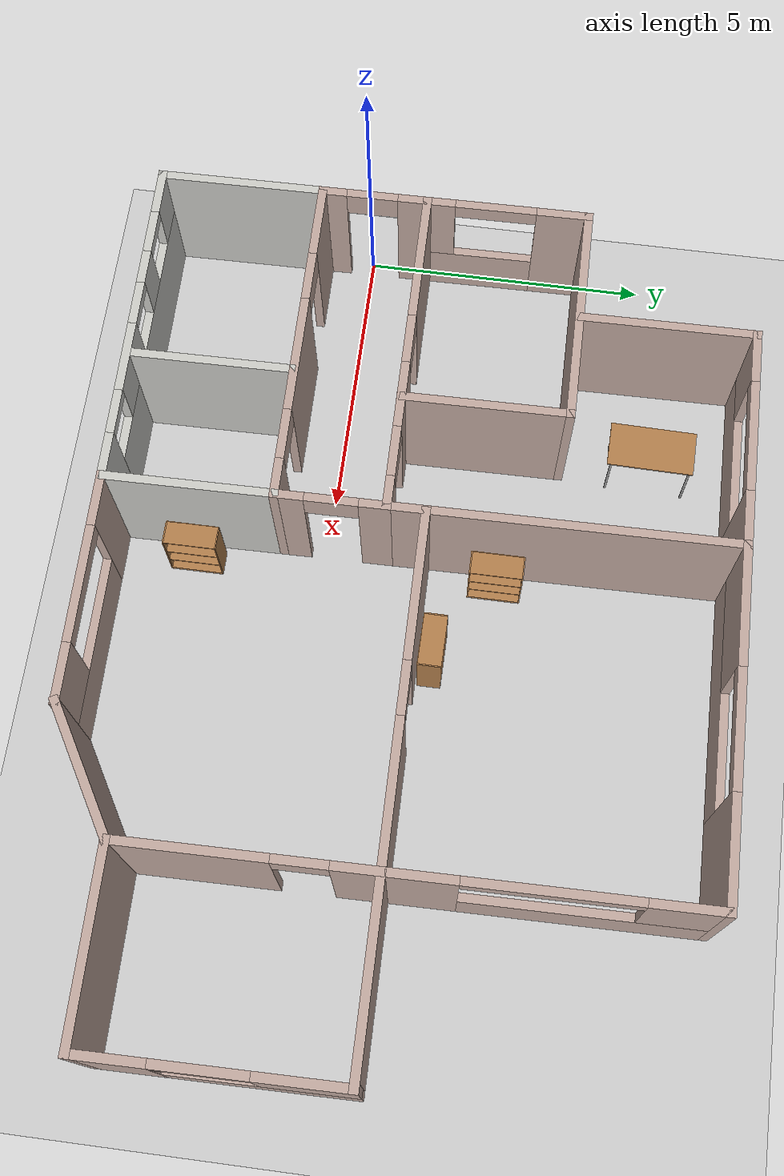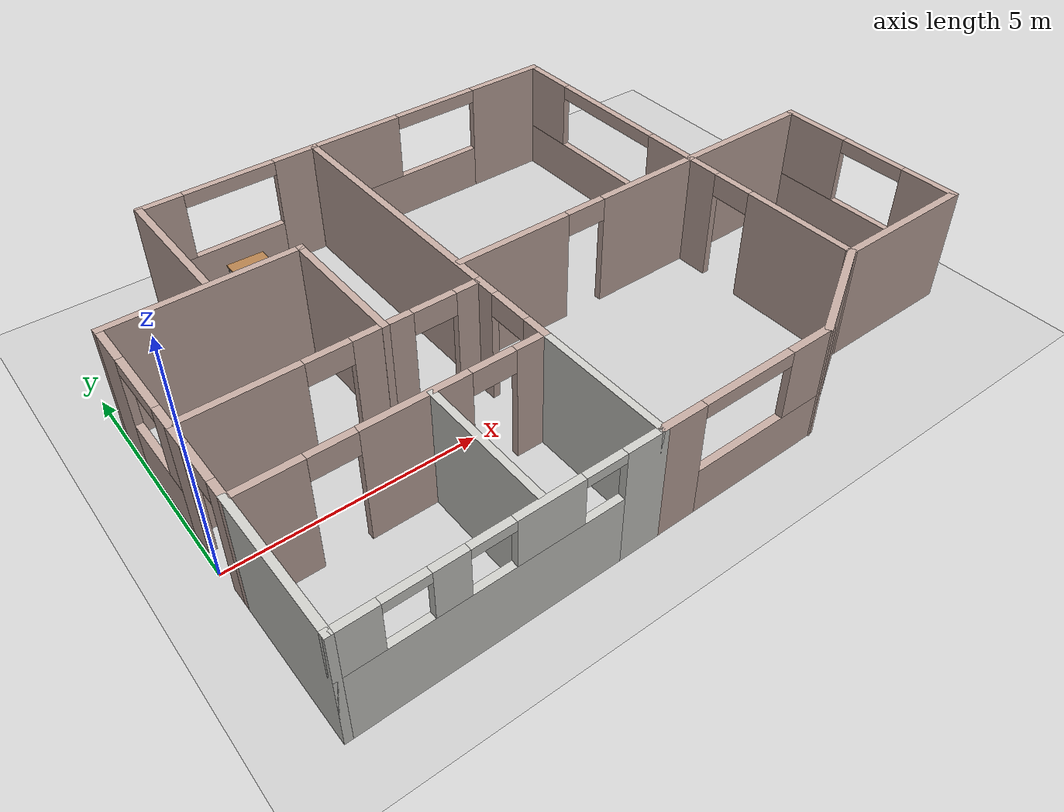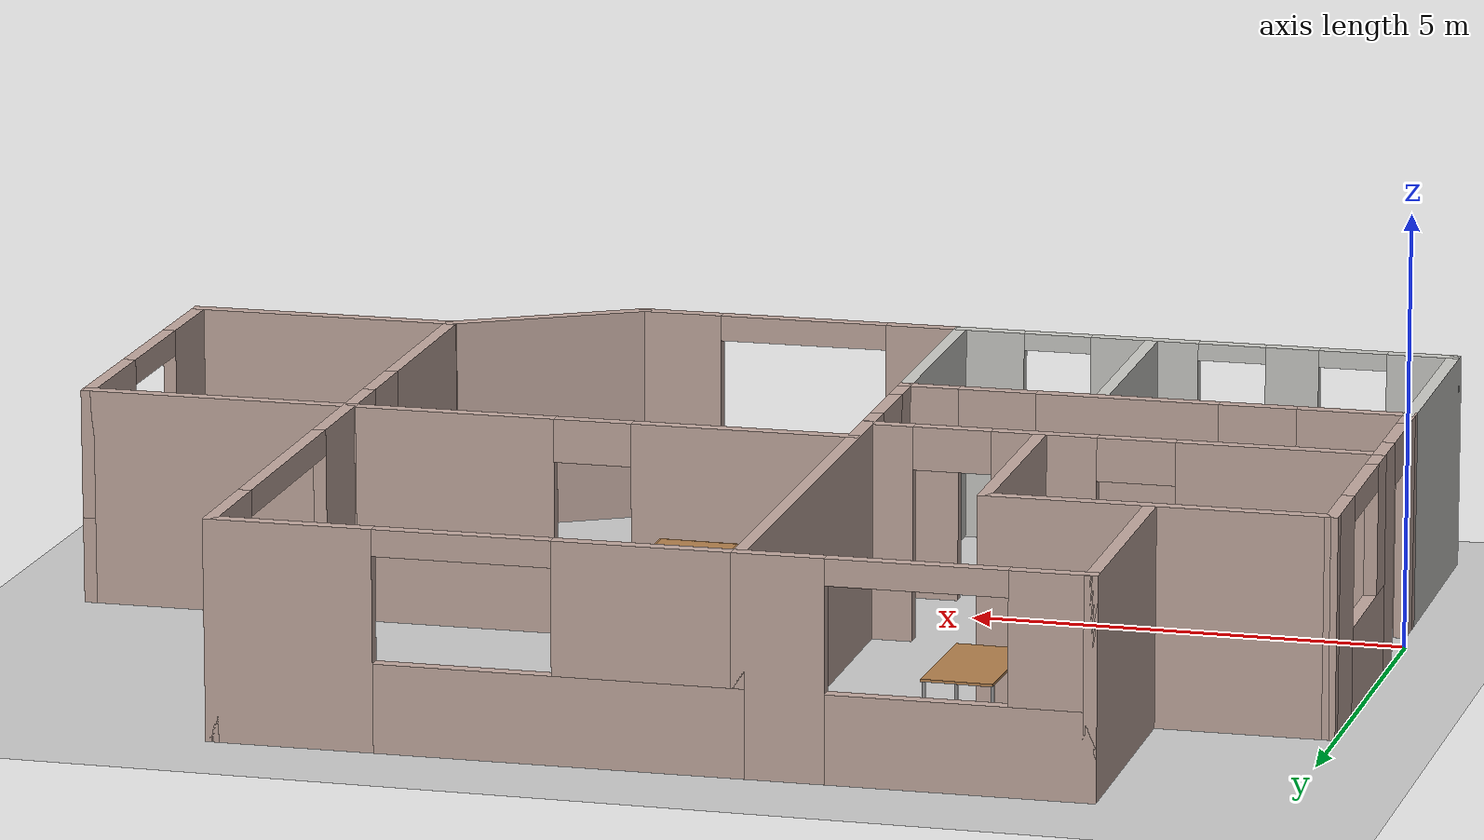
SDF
<sdf version="1.6">
 <world name="default">
  <model name="ground_plane">
   <static>1</static>
   <link name="link">
    <collision name="collision">
     <geometry><plane><normal>0 0 1</normal><size>100 100</size></plane></geometry>
     <surface>
      <contact><collide_bitmask>65535</collide_bitmask></contact>
      <friction><ode><mu>100</mu><mu2>50</mu2></ode></friction>
     </surface>
    </collision>
    <visual name="visual">
     <cast_shadows>0</cast_shadows>
     <geometry><plane><normal>0 0 1</normal><size>100 100</size></plane></geometry>
     <material>
      <script><uri>file://media/materials/scripts/gazebo.material</uri><name>Gazebo/Grey</name></script>
     </material>
    </visual>
   </link>
  </model>
  <model name="mybuilding">
   <pose>7.53126 1.66556 0 0 0 -3.13006</pose>
   <link name="Wall_0">
    <pose>1.56663 1.48627 0 0 -0 -1.5708</pose>
    <visual name="Wall_0_Visual_0">
     <pose>-0.7175 0 1.25 0 -0 0</pose>
     <geometry><box><size>0.565 0.15 2.5</size></box></geometry>
     <material>
      <script><uri>file://media/materials/scripts/gazebo.material</uri><name>Gazebo/Grey</name></script>
      <ambient>0.760784 0.662745 0.627451 1</ambient>
     </material>
     <meta><layer>0</layer></meta>
    </visual>
    <collision name="Wall_0_Collision_0">
     <geometry><box><size>0.565 0.15 2.5</size></box></geometry>
     <pose>-0.7175 0 1.25 0 -0 0</pose>
    </collision>
    <visual name="Wall_0_Visual_1">
     <pose>0.7325 0 1.25 0 -0 0</pose>
     <geometry><box><size>0.535 0.15 2.5</size></box></geometry>
     <material>
      <script><uri>file://media/materials/scripts/gazebo.material</uri><name>Gazebo/Grey</name></script>
      <ambient>0.760784 0.662745 0.627451 1</ambient>
     </material>
     <meta><layer>0</layer></meta>
    </visual>
    <collision name="Wall_0_Collision_1">
     <geometry><box><size>0.535 0.15 2.5</size></box></geometry>
     <pose>0.7325 0 1.25 0 -0 0</pose>
    </collision>
    <visual name="Wall_0_Visual_2">
     <pose>0.015 0 2.25 0 -0 0</pose>
     <geometry><box><size>0.9 0.15 0.5</size></box></geometry>
     <material>
      <script><uri>file://media/materials/scripts/gazebo.material</uri><name>Gazebo/Grey</name></script>
      <ambient>0.760784 0.662745 0.627451 1</ambient>
     </material>
     <meta><layer>0</layer></meta>
    </visual>
    <collision name="Wall_0_Collision_2">
     <geometry><box><size>0.9 0.15 0.5</size></box></geometry>
     <pose>0.015 0 2.25 0 -0 0</pose>
    </collision>
   </link>
   <link name="Wall_1">
    <pose>4.49163 0.561274 0 0 -0 0</pose>
    <visual name="Wall_1_Visual_0">
     <pose>-2.6925 0 1.25 0 -0 0</pose>
     <geometry><box><size>0.615 0.15 2.5</size></box></geometry>
     <material>
      <script><uri>file://media/materials/scripts/gazebo.material</uri><name>Gazebo/Grey</name></script>
      <ambient>0.760784 0.662745 0.627451 1</ambient>
     </material>
     <meta><layer>0</layer></meta>
    </visual>
    <collision name="Wall_1_Collision_0">
     <geometry><box><size>0.615 0.15 2.5</size></box></geometry>
     <pose>-2.6925 0 1.25 0 -0 0</pose>
    </collision>
    <visual name="Wall_1_Visual_1">
     <pose>-0.88 0 1.25 0 -0 0</pose>
     <geometry><box><size>1.21 0.15 2.5</size></box></geometry>
     <material>
      <script><uri>file://media/materials/scripts/gazebo.material</uri><name>Gazebo/Grey</name></script>
      <ambient>0.760784 0.662745 0.627451 1</ambient>
     </material>
     <meta><layer>0</layer></meta>
    </visual>
    <collision name="Wall_1_Collision_1">
     <geometry><box><size>1.21 0.15 2.5</size></box></geometry>
     <pose>-0.88 0 1.25 0 -0 0</pose>
    </collision>
    <visual name="Wall_1_Visual_2">
     <pose>1.8125 0 1.25 0 -0 0</pose>
     <geometry><box><size>2.375 0.15 2.5</size></box></geometry>
     <material>
      <script><uri>file://media/materials/scripts/gazebo.material</uri><name>Gazebo/Grey</name></script>
      <ambient>0.760784 0.662745 0.627451 1</ambient>
     </material>
     <meta><layer>0</layer></meta>
    </visual>
    <collision name="Wall_1_Collision_2">
     <geometry><box><size>2.375 0.15 2.5</size></box></geometry>
     <pose>1.8125 0 1.25 0 -0 0</pose>
    </collision>
    <visual name="Wall_1_Visual_3">
     <pose>-1.935 0 2.25 0 -0 0</pose>
     <geometry><box><size>0.9 0.15 0.5</size></box></geometry>
     <material>
      <script><uri>file://media/materials/scripts/gazebo.material</uri><name>Gazebo/Grey</name></script>
      <ambient>0.760784 0.662745 0.627451 1</ambient>
     </material>
     <meta><layer>0</layer></meta>
    </visual>
    <collision name="Wall_1_Collision_3">
     <geometry><box><size>0.9 0.15 0.5</size></box></geometry>
     <pose>-1.935 0 2.25 0 -0 0</pose>
    </collision>
    <visual name="Wall_1_Visual_4">
     <pose>0.175 0 2.25 0 -0 0</pose>
     <geometry><box><size>0.9 0.15 0.5</size></box></geometry>
     <material>
      <script><uri>file://media/materials/scripts/gazebo.material</uri><name>Gazebo/Grey</name></script>
      <ambient>0.760784 0.662745 0.627451 1</ambient>
     </material>
     <meta><layer>0</layer></meta>
    </visual>
    <collision name="Wall_1_Collision_4">
     <geometry><box><size>0.9 0.15 0.5</size></box></geometry>
     <pose>0.175 0 2.25 0 -0 0</pose>
    </collision>
   </link>
   <link name="Wall_10">
    <pose>3.49163 -5.28873 0 0 -0 0</pose>
    <visual name="Wall_10_Visual_0">
     <pose>-1.48371 0 1.25 0 -0 0</pose>
     <geometry><box><size>1.03258 0.15 2.5</size></box></geometry>
     <material>
      <script><uri>file://media/materials/scripts/gazebo.material</uri><name>Gazebo/Grey</name></script>
      <ambient>0.760784 0.662745 0.627451 1</ambient>
     </material>
     <meta><layer>0</layer></meta>
    </visual>
    <collision name="Wall_10_Collision_0">
     <geometry><box><size>1.03258 0.15 2.5</size></box></geometry>
     <pose>-1.48371 0 1.25 0 -0 0</pose>
    </collision>
    <visual name="Wall_10_Visual_1">
     <pose>0.516287 0 0.5 0 -0 0</pose>
     <geometry><box><size>2.96742 0.15 1</size></box></geometry>
     <material>
      <script><uri>file://media/materials/scripts/gazebo.material</uri><name>Gazebo/Grey</name></script>
      <ambient>0.760784 0.662745 0.627451 1</ambient>
     </material>
     <meta><layer>0</layer></meta>
    </visual>
    <collision name="Wall_10_Collision_1">
     <geometry><box><size>2.96742 0.15 1</size></box></geometry>
     <pose>0.516287 0 0.5 0 -0 0</pose>
    </collision>
    <visual name="Wall_10_Visual_2">
     <pose>1.51629 0 1.75 0 -0 0</pose>
     <geometry><box><size>0.967425 0.15 1.5</size></box></geometry>
     <material>
      <script><uri>file://media/materials/scripts/gazebo.material</uri><name>Gazebo/Grey</name></script>
      <ambient>0.760784 0.662745 0.627451 1</ambient>
     </material>
     <meta><layer>0</layer></meta>
    </visual>
    <collision name="Wall_10_Collision_2">
     <geometry><box><size>0.967425 0.15 1.5</size></box></geometry>
     <pose>1.51629 0 1.75 0 -0 0</pose>
    </collision>
    <visual name="Wall_10_Visual_3">
     <pose>0.032575 0 2.35 0 -0 0</pose>
     <geometry><box><size>2 0.15 0.3</size></box></geometry>
     <material>
      <script><uri>file://media/materials/scripts/gazebo.material</uri><name>Gazebo/Grey</name></script>
      <ambient>0.760784 0.662745 0.627451 1</ambient>
     </material>
     <meta><layer>0</layer></meta>
    </visual>
    <collision name="Wall_10_Collision_3">
     <geometry><box><size>2 0.15 0.3</size></box></geometry>
     <pose>0.032575 0 2.35 0 -0 0</pose>
    </collision>
   </link>
   <link name="Wall_11">
    <collision name="Wall_11_Collision">
     <geometry><box><size>3.165 0.15 2.5</size></box></geometry>
     <pose>0 0 1.25 0 -0 0</pose>
    </collision>
    <visual name="Wall_11_Visual">
     <pose>0 0 1.25 0 -0 0</pose>
     <geometry><box><size>3.165 0.15 2.5</size></box></geometry>
     <material>
      <script><uri>file://media/materials/scripts/gazebo.material</uri><name>Gazebo/Grey</name></script>
      <ambient>0.760784 0.662745 0.627451 1</ambient>
     </material>
     <meta><layer>0</layer></meta>
    </visual>
    <pose>5.41663 -3.78123 0 0 -0 1.5708</pose>
   </link>
   <link name="Wall_13">
    <collision name="Wall_13_Collision">
     <geometry><box><size>3 0.15 2.5</size></box></geometry>
     <pose>0 0 1.25 0 -0 0</pose>
    </collision>
    <visual name="Wall_13_Visual">
     <pose>0 0 1.25 0 -0 0</pose>
     <geometry><box><size>3 0.15 2.5</size></box></geometry>
     <material>
      <script><uri>file://media/materials/scripts/gazebo.material</uri><name>Gazebo/CeilingTiled</name></script>
      <ambient>0.760784 0.662745 0.627451 1</ambient>
     </material>
     <meta><layer>0</layer></meta>
    </visual>
    <pose>1.56663 3.83627 0 0 -0 1.5708</pose>
   </link>
   <link name="Wall_14">
    <pose>4.49163 5.26127 0 0 -0 0</pose>
    <visual name="Wall_14_Visual_0">
     <pose>-2.57832 0 1.25 0 -0 0</pose>
     <geometry><box><size>0.843365 0.15 2.5</size></box></geometry>
     <material>
      <script><uri>file://media/materials/scripts/gazebo.material</uri><name>Gazebo/CeilingTiled</name></script>
      <ambient>1 1 1 1</ambient>
     </material>
     <meta><layer>0</layer></meta>
    </visual>
    <collision name="Wall_14_Collision_0">
     <geometry><box><size>0.843365 0.15 2.5</size></box></geometry>
     <pose>-2.57832 0 1.25 0 -0 0</pose>
    </collision>
    <visual name="Wall_14_Visual_1">
     <pose>0.421683 0 0.75 0 -0 0</pose>
     <geometry><box><size>5.15663 0.15 1.5</size></box></geometry>
     <material>
      <script><uri>file://media/materials/scripts/gazebo.material</uri><name>Gazebo/CeilingTiled</name></script>
      <ambient>1 1 1 1</ambient>
     </material>
     <meta><layer>0</layer></meta>
    </visual>
    <collision name="Wall_14_Collision_1">
     <geometry><box><size>5.15663 0.15 1.5</size></box></geometry>
     <pose>0.421683 0 0.75 0 -0 0</pose>
    </collision>
    <visual name="Wall_14_Visual_2">
     <pose>-0.718472 0 2 0 -0 0</pose>
     <geometry><box><size>1.27632 0.15 1</size></box></geometry>
     <material>
      <script><uri>file://media/materials/scripts/gazebo.material</uri><name>Gazebo/CeilingTiled</name></script>
      <ambient>1 1 1 1</ambient>
     </material>
     <meta><layer>0</layer></meta>
    </visual>
    <collision name="Wall_14_Collision_2">
     <geometry><box><size>1.27632 0.15 1</size></box></geometry>
     <pose>-0.718472 0 2 0 -0 0</pose>
    </collision>
    <visual name="Wall_14_Visual_3">
     <pose>1.03384 0 2 0 -0 0</pose>
     <geometry><box><size>0.6283 0.15 1</size></box></geometry>
     <material>
      <script><uri>file://media/materials/scripts/gazebo.material</uri><name>Gazebo/CeilingTiled</name></script>
      <ambient>1 1 1 1</ambient>
     </material>
     <meta><layer>0</layer></meta>
    </visual>
    <collision name="Wall_14_Collision_3">
     <geometry><box><size>0.6283 0.15 1</size></box></geometry>
     <pose>1.03384 0 2 0 -0 0</pose>
    </collision>
    <visual name="Wall_14_Visual_4">
     <pose>2.574 0 2 0 -0 0</pose>
     <geometry><box><size>0.85201 0.15 1</size></box></geometry>
     <material>
      <script><uri>file://media/materials/scripts/gazebo.material</uri><name>Gazebo/CeilingTiled</name></script>
      <ambient>1 1 1 1</ambient>
     </material>
     <meta><layer>0</layer></meta>
    </visual>
    <collision name="Wall_14_Collision_4">
     <geometry><box><size>0.85201 0.15 1</size></box></geometry>
     <pose>2.574 0 2 0 -0 0</pose>
    </collision>
    <visual name="Wall_14_Visual_5">
     <pose>-1.75663 0 2.4 0 -0 0</pose>
     <geometry><box><size>0.8 0.15 0.2</size></box></geometry>
     <material>
      <script><uri>file://media/materials/scripts/gazebo.material</uri><name>Gazebo/CeilingTiled</name></script>
      <ambient>1 1 1 1</ambient>
     </material>
     <meta><layer>0</layer></meta>
    </visual>
    <collision name="Wall_14_Collision_5">
     <geometry><box><size>0.8 0.15 0.2</size></box></geometry>
     <pose>-1.75663 0 2.4 0 -0 0</pose>
    </collision>
    <visual name="Wall_14_Visual_6">
     <pose>0.31969 0 2.4 0 -0 0</pose>
     <geometry><box><size>0.8 0.15 0.2</size></box></geometry>
     <material>
      <script><uri>file://media/materials/scripts/gazebo.material</uri><name>Gazebo/CeilingTiled</name></script>
      <ambient>1 1 1 1</ambient>
     </material>
     <meta><layer>0</layer></meta>
    </visual>
    <collision name="Wall_14_Collision_6">
     <geometry><box><size>0.8 0.15 0.2</size></box></geometry>
     <pose>0.31969 0 2.4 0 -0 0</pose>
    </collision>
    <visual name="Wall_14_Visual_7">
     <pose>1.74799 0 2.4 0 -0 0</pose>
     <geometry><box><size>0.8 0.15 0.2</size></box></geometry>
     <material>
      <script><uri>file://media/materials/scripts/gazebo.material</uri><name>Gazebo/CeilingTiled</name></script>
      <ambient>1 1 1 1</ambient>
     </material>
     <meta><layer>0</layer></meta>
    </visual>
    <collision name="Wall_14_Collision_7">
     <geometry><box><size>0.8 0.15 0.2</size></box></geometry>
     <pose>1.74799 0 2.4 0 -0 0</pose>
    </collision>
   </link>
   <link name="Wall_15">
    <collision name="Wall_15_Collision">
     <geometry><box><size>3 0.15 2.5</size></box></geometry>
     <pose>0 0 1.25 0 -0 0</pose>
    </collision>
    <visual name="Wall_15_Visual">
     <pose>0 0 1.25 0 -0 0</pose>
     <geometry><box><size>3 0.15 2.5</size></box></geometry>
     <material>
      <script><uri>file://media/materials/scripts/gazebo.material</uri><name>Gazebo/CeilingTiled</name></script>
      <ambient>1 1 1 1</ambient>
     </material>
     <meta><layer>0</layer></meta>
    </visual>
    <pose>7.41663 3.83627 0 0 -0 -1.5708</pose>
   </link>
   <link name="Wall_17">
    <collision name="Wall_17_Collision">
     <geometry><box><size>2.81 0.15 2.5</size></box></geometry>
     <pose>0 0 1.25 0 -0 0</pose>
    </collision>
    <visual name="Wall_17_Visual">
     <pose>0 0 1.25 0 -0 0</pose>
     <geometry><box><size>2.81 0.15 2.5</size></box></geometry>
     <material>
      <script><uri>file://media/materials/scripts/gazebo.material</uri><name>Gazebo/CeilingTiled</name></script>
      <ambient>1 1 1 1</ambient>
     </material>
     <meta><layer>0</layer></meta>
    </visual>
    <pose>3.85863 3.79127 0 0 -0 1.5708</pose>
   </link>
   <link name="Wall_19">
    <pose>-0.358374 5.26127 0 0 -0 3.14159</pose>
    <visual name="Wall_19_Visual_0">
     <pose>-1.51488 0 1.25 0 -0 0</pose>
     <geometry><box><size>0.970244 0.15 2.5</size></box></geometry>
     <material>
      <script><uri>file://media/materials/scripts/gazebo.material</uri><name>Gazebo/Grey</name></script>
      <ambient>0.760784 0.662745 0.627451 1</ambient>
     </material>
     <meta><layer>0</layer></meta>
    </visual>
    <collision name="Wall_19_Collision_0">
     <geometry><box><size>0.970244 0.15 2.5</size></box></geometry>
     <pose>-1.51488 0 1.25 0 -0 0</pose>
    </collision>
    <visual name="Wall_19_Visual_1">
     <pose>0.485122 0 0.5 0 -0 0</pose>
     <geometry><box><size>3.02976 0.15 1</size></box></geometry>
     <material>
      <script><uri>file://media/materials/scripts/gazebo.material</uri><name>Gazebo/Grey</name></script>
      <ambient>0.760784 0.662745 0.627451 1</ambient>
     </material>
     <meta><layer>0</layer></meta>
    </visual>
    <collision name="Wall_19_Collision_1">
     <geometry><box><size>3.02976 0.15 1</size></box></geometry>
     <pose>0.485122 0 0.5 0 -0 0</pose>
    </collision>
    <visual name="Wall_19_Visual_2">
     <pose>1.48512 0 1.75 0 -0 0</pose>
     <geometry><box><size>1.02976 0.15 1.5</size></box></geometry>
     <material>
      <script><uri>file://media/materials/scripts/gazebo.material</uri><name>Gazebo/Grey</name></script>
      <ambient>0.760784 0.662745 0.627451 1</ambient>
     </material>
     <meta><layer>0</layer></meta>
    </visual>
    <collision name="Wall_19_Collision_2">
     <geometry><box><size>1.02976 0.15 1.5</size></box></geometry>
     <pose>1.48512 0 1.75 0 -0 0</pose>
    </collision>
    <visual name="Wall_19_Visual_3">
     <pose>-0.029756 0 2.35 0 -0 0</pose>
     <geometry><box><size>2 0.15 0.3</size></box></geometry>
     <material>
      <script><uri>file://media/materials/scripts/gazebo.material</uri><name>Gazebo/Grey</name></script>
      <ambient>0.760784 0.662745 0.627451 1</ambient>
     </material>
     <meta><layer>0</layer></meta>
    </visual>
    <collision name="Wall_19_Collision_3">
     <geometry><box><size>2 0.15 0.3</size></box></geometry>
     <pose>-0.029756 0 2.35 0 -0 0</pose>
    </collision>
   </link>
   <link name="Wall_2">
    <pose>7.41663 1.48627 0 0 -0 1.5708</pose>
    <visual name="Wall_2_Visual_0">
     <pose>-0.7025 0 1.25 0 -0 0</pose>
     <geometry><box><size>0.595 0.15 2.5</size></box></geometry>
     <material>
      <script><uri>file://media/materials/scripts/gazebo.material</uri><name>Gazebo/Grey</name></script>
      <ambient>0.760784 0.662745 0.627451 1</ambient>
     </material>
     <meta><layer>0</layer></meta>
    </visual>
    <collision name="Wall_2_Collision_0">
     <geometry><box><size>0.595 0.15 2.5</size></box></geometry>
     <pose>-0.7025 0 1.25 0 -0 0</pose>
    </collision>
    <visual name="Wall_2_Visual_1">
     <pose>0.7475 0 1.25 0 -0 0</pose>
     <geometry><box><size>0.505 0.15 2.5</size></box></geometry>
     <material>
      <script><uri>file://media/materials/scripts/gazebo.material</uri><name>Gazebo/Grey</name></script>
      <ambient>0.760784 0.662745 0.627451 1</ambient>
     </material>
     <meta><layer>0</layer></meta>
    </visual>
    <collision name="Wall_2_Collision_1">
     <geometry><box><size>0.505 0.15 2.5</size></box></geometry>
     <pose>0.7475 0 1.25 0 -0 0</pose>
    </collision>
    <visual name="Wall_2_Visual_2">
     <pose>0.045 0 2.25 0 -0 0</pose>
     <geometry><box><size>0.9 0.15 0.5</size></box></geometry>
     <material>
      <script><uri>file://media/materials/scripts/gazebo.material</uri><name>Gazebo/Grey</name></script>
      <ambient>0.760784 0.662745 0.627451 1</ambient>
     </material>
     <meta><layer>0</layer></meta>
    </visual>
    <collision name="Wall_2_Collision_2">
     <geometry><box><size>0.9 0.15 0.5</size></box></geometry>
     <pose>0.045 0 2.25 0 -0 0</pose>
    </collision>
   </link>
   <link name="Wall_20">
    <collision name="Wall_20_Collision">
     <geometry><box><size>2.5 0.15 2.5</size></box></geometry>
     <pose>0 0 1.25 0 -0 0</pose>
    </collision>
    <visual name="Wall_20_Visual">
     <pose>0 0 1.25 0 -0 0</pose>
     <geometry><box><size>2.5 0.15 2.5</size></box></geometry>
     <material>
      <script><uri>file://media/materials/scripts/gazebo.material</uri><name>Gazebo/Grey</name></script>
      <ambient>0.760784 0.662745 0.627451 1</ambient>
     </material>
     <meta><layer>0</layer></meta>
    </visual>
    <pose>-3.30096 4.67377 0 0 -0 -2.61799</pose>
   </link>
   <link name="Wall_21">
    <pose>-4.31846 -0.601226 0 0 -0 -1.57078</pose>
    <visual name="Wall_21_Visual_0">
     <pose>-3.47885 0 1.25 0 -0 0</pose>
     <geometry><box><size>2.5673 0.15 2.5</size></box></geometry>
     <material>
      <script><uri>file://media/materials/scripts/gazebo.material</uri><name>Gazebo/Grey</name></script>
      <ambient>0.760784 0.662745 0.627451 1</ambient>
     </material>
     <meta><layer>0</layer></meta>
    </visual>
    <collision name="Wall_21_Collision_0">
     <geometry><box><size>2.5673 0.15 2.5</size></box></geometry>
     <pose>-3.47885 0 1.25 0 -0 0</pose>
    </collision>
    <visual name="Wall_21_Visual_1">
     <pose>-0.317714 0 1.25 0 -0 0</pose>
     <geometry><box><size>1.95498 0.15 2.5</size></box></geometry>
     <material>
      <script><uri>file://media/materials/scripts/gazebo.material</uri><name>Gazebo/Grey</name></script>
      <ambient>0.760784 0.662745 0.627451 1</ambient>
     </material>
     <meta><layer>0</layer></meta>
    </visual>
    <collision name="Wall_21_Collision_1">
     <geometry><box><size>1.95498 0.15 2.5</size></box></geometry>
     <pose>-0.317714 0 1.25 0 -0 0</pose>
    </collision>
    <visual name="Wall_21_Visual_2">
     <pose>2.71114 0 0.5 0 -0 0</pose>
     <geometry><box><size>4.10272 0.15 1</size></box></geometry>
     <material>
      <script><uri>file://media/materials/scripts/gazebo.material</uri><name>Gazebo/Grey</name></script>
      <ambient>0.760784 0.662745 0.627451 1</ambient>
     </material>
     <meta><layer>0</layer></meta>
    </visual>
    <collision name="Wall_21_Collision_2">
     <geometry><box><size>4.10272 0.15 1</size></box></geometry>
     <pose>2.71114 0 0.5 0 -0 0</pose>
    </collision>
    <visual name="Wall_21_Visual_3">
     <pose>4.11114 0 1.75 0 -0 0</pose>
     <geometry><box><size>1.30272 0.15 1.5</size></box></geometry>
     <material>
      <script><uri>file://media/materials/scripts/gazebo.material</uri><name>Gazebo/Grey</name></script>
      <ambient>0.760784 0.662745 0.627451 1</ambient>
     </material>
     <meta><layer>0</layer></meta>
    </visual>
    <collision name="Wall_21_Collision_3">
     <geometry><box><size>1.30272 0.15 1.5</size></box></geometry>
     <pose>4.11114 0 1.75 0 -0 0</pose>
    </collision>
    <visual name="Wall_21_Visual_4">
     <pose>-1.7452 0 2.25 0 -0 0</pose>
     <geometry><box><size>0.9 0.15 0.5</size></box></geometry>
     <material>
      <script><uri>file://media/materials/scripts/gazebo.material</uri><name>Gazebo/Grey</name></script>
      <ambient>0.760784 0.662745 0.627451 1</ambient>
     </material>
     <meta><layer>0</layer></meta>
    </visual>
    <collision name="Wall_21_Collision_4">
     <geometry><box><size>0.9 0.15 0.5</size></box></geometry>
     <pose>-1.7452 0 2.25 0 -0 0</pose>
    </collision>
    <visual name="Wall_21_Visual_5">
     <pose>2.05978 0 2.35 0 -0 0</pose>
     <geometry><box><size>2.8 0.15 0.3</size></box></geometry>
     <material>
      <script><uri>file://media/materials/scripts/gazebo.material</uri><name>Gazebo/Grey</name></script>
      <ambient>0.760784 0.662745 0.627451 1</ambient>
     </material>
     <meta><layer>0</layer></meta>
    </visual>
    <collision name="Wall_21_Collision_5">
     <geometry><box><size>2.8 0.15 0.3</size></box></geometry>
     <pose>2.05978 0 2.35 0 -0 0</pose>
    </collision>
   </link>
   <link name="Wall_22">
    <pose>-1.37587 -5.28873 0 0 -0 0</pose>
    <visual name="Wall_22_Visual_0">
     <pose>-2.06844 0 1.25 0 -0 0</pose>
     <geometry><box><size>1.89834 0.15 2.5</size></box></geometry>
     <material>
      <script><uri>file://media/materials/scripts/gazebo.material</uri><name>Gazebo/Grey</name></script>
      <ambient>0.760784 0.662745 0.627451 1</ambient>
     </material>
     <meta><layer>0</layer></meta>
    </visual>
    <collision name="Wall_22_Collision_0">
     <geometry><box><size>1.89834 0.15 2.5</size></box></geometry>
     <pose>-2.06844 0 1.25 0 -0 0</pose>
    </collision>
    <visual name="Wall_22_Visual_1">
     <pose>0.949169 0 0.5 0 -0 0</pose>
     <geometry><box><size>4.13687 0.15 1</size></box></geometry>
     <material>
      <script><uri>file://media/materials/scripts/gazebo.material</uri><name>Gazebo/Grey</name></script>
      <ambient>0.760784 0.662745 0.627451 1</ambient>
     </material>
     <meta><layer>0</layer></meta>
    </visual>
    <collision name="Wall_22_Collision_1">
     <geometry><box><size>4.13687 0.15 1</size></box></geometry>
     <pose>0.949169 0 0.5 0 -0 0</pose>
    </collision>
    <visual name="Wall_22_Visual_2">
     <pose>1.94917 0 1.75 0 -0 0</pose>
     <geometry><box><size>2.13687 0.15 1.5</size></box></geometry>
     <material>
      <script><uri>file://media/materials/scripts/gazebo.material</uri><name>Gazebo/Grey</name></script>
      <ambient>0.760784 0.662745 0.627451 1</ambient>
     </material>
     <meta><layer>0</layer></meta>
    </visual>
    <collision name="Wall_22_Collision_2">
     <geometry><box><size>2.13687 0.15 1.5</size></box></geometry>
     <pose>1.94917 0 1.75 0 -0 0</pose>
    </collision>
    <visual name="Wall_22_Visual_3">
     <pose>-0.119267 0 2.35 0 -0 0</pose>
     <geometry><box><size>2 0.15 0.3</size></box></geometry>
     <material>
      <script><uri>file://media/materials/scripts/gazebo.material</uri><name>Gazebo/Grey</name></script>
      <ambient>0.760784 0.662745 0.627451 1</ambient>
     </material>
     <meta><layer>0</layer></meta>
    </visual>
    <collision name="Wall_22_Collision_3">
     <geometry><box><size>2 0.15 0.3</size></box></geometry>
     <pose>-0.119267 0 2.35 0 -0 0</pose>
    </collision>
   </link>
   <link name="Wall_24">
    <pose>-1.37819 -0.082545 0 0 -0 6.2e-05</pose>
    <visual name="Wall_24_Visual_0">
     <pose>-1.76034 0 1.25 0 -0 0</pose>
     <geometry><box><size>2.47931 0.15 2.5</size></box></geometry>
     <material>
      <script><uri>file://media/materials/scripts/gazebo.material</uri><name>Gazebo/Grey</name></script>
      <ambient>0.760784 0.662745 0.627451 1</ambient>
     </material>
     <meta><layer>0</layer></meta>
    </visual>
    <collision name="Wall_24_Collision_0">
     <geometry><box><size>2.47931 0.15 2.5</size></box></geometry>
     <pose>-1.76034 0 1.25 0 -0 0</pose>
    </collision>
    <visual name="Wall_24_Visual_1">
     <pose>1.68966 0 1.25 0 -0 0</pose>
     <geometry><box><size>2.62069 0.15 2.5</size></box></geometry>
     <material>
      <script><uri>file://media/materials/scripts/gazebo.material</uri><name>Gazebo/Grey</name></script>
      <ambient>0.760784 0.662745 0.627451 1</ambient>
     </material>
     <meta><layer>0</layer></meta>
    </visual>
    <collision name="Wall_24_Collision_1">
     <geometry><box><size>2.62069 0.15 2.5</size></box></geometry>
     <pose>1.68966 0 1.25 0 -0 0</pose>
    </collision>
    <visual name="Wall_24_Visual_2">
     <pose>-0.070687 0 2.25 0 -0 0</pose>
     <geometry><box><size>0.9 0.15 0.5</size></box></geometry>
     <material>
      <script><uri>file://media/materials/scripts/gazebo.material</uri><name>Gazebo/Grey</name></script>
      <ambient>0.760784 0.662745 0.627451 1</ambient>
     </material>
     <meta><layer>0</layer></meta>
    </visual>
    <collision name="Wall_24_Collision_2">
     <geometry><box><size>0.9 0.15 0.5</size></box></geometry>
     <pose>-0.070687 0 2.25 0 -0 0</pose>
    </collision>
   </link>
   <link name="Wall_26">
    <collision name="Wall_26_Collision">
     <geometry><box><size>3.25 0.15 2.5</size></box></geometry>
     <pose>0 0 1.25 0 -0 0</pose>
    </collision>
    <visual name="Wall_26_Visual">
     <pose>0 0 1.25 0 -0 0</pose>
     <geometry><box><size>3.25 0.15 2.5</size></box></geometry>
     <material>
      <script><uri>file://media/materials/scripts/gazebo.material</uri><name>Gazebo/Grey</name></script>
      <ambient>0.760784 0.662745 0.627451 1</ambient>
     </material>
     <meta><layer>0</layer></meta>
    </visual>
    <pose>-5.86853 4.08627 0 0 -0 3.14159</pose>
   </link>
   <link name="Wall_27">
    <pose>-7.41845 2.00177 0 0 -0 -1.57076</pose>
    <visual name="Wall_27_Visual_0">
     <pose>-1.53124 0 1.25 0 -0 0</pose>
     <geometry><box><size>1.25652 0.15 2.5</size></box></geometry>
     <material>
      <script><uri>file://media/materials/scripts/gazebo.material</uri><name>Gazebo/Grey</name></script>
      <ambient>0.760784 0.662745 0.627451 1</ambient>
     </material>
     <meta><layer>0</layer></meta>
    </visual>
    <collision name="Wall_27_Collision_0">
     <geometry><box><size>1.25652 0.15 2.5</size></box></geometry>
     <pose>-1.53124 0 1.25 0 -0 0</pose>
    </collision>
    <visual name="Wall_27_Visual_1">
     <pose>0.628263 0 0.5 0 -0 0</pose>
     <geometry><box><size>3.06248 0.15 1</size></box></geometry>
     <material>
      <script><uri>file://media/materials/scripts/gazebo.material</uri><name>Gazebo/Grey</name></script>
      <ambient>0.760784 0.662745 0.627451 1</ambient>
     </material>
     <meta><layer>0</layer></meta>
    </visual>
    <collision name="Wall_27_Collision_1">
     <geometry><box><size>3.06248 0.15 1</size></box></geometry>
     <pose>0.628263 0 0.5 0 -0 0</pose>
    </collision>
    <visual name="Wall_27_Visual_2">
     <pose>1.37826 0 1.75 0 -0 0</pose>
     <geometry><box><size>1.56248 0.15 1.5</size></box></geometry>
     <material>
      <script><uri>file://media/materials/scripts/gazebo.material</uri><name>Gazebo/Grey</name></script>
      <ambient>0.760784 0.662745 0.627451 1</ambient>
     </material>
     <meta><layer>0</layer></meta>
    </visual>
    <collision name="Wall_27_Collision_2">
     <geometry><box><size>1.56248 0.15 1.5</size></box></geometry>
     <pose>1.37826 0 1.75 0 -0 0</pose>
    </collision>
    <visual name="Wall_27_Visual_3">
     <pose>-0.152975 0 2.35 0 -0 0</pose>
     <geometry><box><size>1.5 0.15 0.3</size></box></geometry>
     <material>
      <script><uri>file://media/materials/scripts/gazebo.material</uri><name>Gazebo/Grey</name></script>
      <ambient>0.760784 0.662745 0.627451 1</ambient>
     </material>
     <meta><layer>0</layer></meta>
    </visual>
    <collision name="Wall_27_Collision_3">
     <geometry><box><size>1.5 0.15 0.3</size></box></geometry>
     <pose>-0.152975 0 2.35 0 -0 0</pose>
    </collision>
   </link>
   <link name="Wall_28">
    <collision name="Wall_28_Collision">
     <geometry><box><size>3.265 0.15 2.5</size></box></geometry>
     <pose>0 0 1.25 0 -0 0</pose>
    </collision>
    <visual name="Wall_28_Visual">
     <pose>0 0 1.25 0 -0 0</pose>
     <geometry><box><size>3.265 0.15 2.5</size></box></geometry>
     <material>
      <script><uri>file://media/materials/scripts/gazebo.material</uri><name>Gazebo/Grey</name></script>
      <ambient>0.760784 0.662745 0.627451 1</ambient>
     </material>
     <meta><layer>0</layer></meta>
    </visual>
    <pose>-5.86087 -0.082726 0 0 -0 0</pose>
   </link>
   <link name="Wall_3">
    <pose>4.49163 2.41127 0 0 -0 3.14159</pose>
    <visual name="Wall_3_Visual_0">
     <pose>-2.3175 0 1.25 0 -0 0</pose>
     <geometry><box><size>1.365 0.15 2.5</size></box></geometry>
     <material>
      <script><uri>file://media/materials/scripts/gazebo.material</uri><name>Gazebo/Grey</name></script>
      <ambient>0.760784 0.662745 0.627451 1</ambient>
     </material>
     <meta><layer>0</layer></meta>
    </visual>
    <collision name="Wall_3_Collision_0">
     <geometry><box><size>1.365 0.15 2.5</size></box></geometry>
     <pose>-2.3175 0 1.25 0 -0 0</pose>
    </collision>
    <visual name="Wall_3_Visual_1">
     <pose>0.325 0 1.25 0 -0 0</pose>
     <geometry><box><size>2.12 0.15 2.5</size></box></geometry>
     <material>
      <script><uri>file://media/materials/scripts/gazebo.material</uri><name>Gazebo/Grey</name></script>
      <ambient>0.760784 0.662745 0.627451 1</ambient>
     </material>
     <meta><layer>0</layer></meta>
    </visual>
    <collision name="Wall_3_Collision_1">
     <geometry><box><size>2.12 0.15 2.5</size></box></geometry>
     <pose>0.325 0 1.25 0 -0 0</pose>
    </collision>
    <visual name="Wall_3_Visual_2">
     <pose>2.6425 0 1.25 0 -0 0</pose>
     <geometry><box><size>0.715 0.15 2.5</size></box></geometry>
     <material>
      <script><uri>file://media/materials/scripts/gazebo.material</uri><name>Gazebo/Grey</name></script>
      <ambient>0.760784 0.662745 0.627451 1</ambient>
     </material>
     <meta><layer>0</layer></meta>
    </visual>
    <collision name="Wall_3_Collision_2">
     <geometry><box><size>0.715 0.15 2.5</size></box></geometry>
     <pose>2.6425 0 1.25 0 -0 0</pose>
    </collision>
    <visual name="Wall_3_Visual_3">
     <pose>-1.185 0 2.25 0 -0 0</pose>
     <geometry><box><size>0.9 0.15 0.5</size></box></geometry>
     <material>
      <script><uri>file://media/materials/scripts/gazebo.material</uri><name>Gazebo/Grey</name></script>
      <ambient>0.760784 0.662745 0.627451 1</ambient>
     </material>
     <meta><layer>0</layer></meta>
    </visual>
    <collision name="Wall_3_Collision_3">
     <geometry><box><size>0.9 0.15 0.5</size></box></geometry>
     <pose>-1.185 0 2.25 0 -0 0</pose>
    </collision>
    <visual name="Wall_3_Visual_4">
     <pose>1.835 0 2.25 0 -0 0</pose>
     <geometry><box><size>0.9 0.15 0.5</size></box></geometry>
     <material>
      <script><uri>file://media/materials/scripts/gazebo.material</uri><name>Gazebo/Grey</name></script>
      <ambient>0.760784 0.662745 0.627451 1</ambient>
     </material>
     <meta><layer>0</layer></meta>
    </visual>
    <collision name="Wall_3_Collision_4">
     <geometry><box><size>0.9 0.15 0.5</size></box></geometry>
     <pose>1.835 0 2.25 0 -0 0</pose>
    </collision>
   </link>
   <link name="Wall_5">
    <collision name="Wall_5_Collision">
     <geometry><box><size>2.984 0.15 2.5</size></box></geometry>
     <pose>0 0 1.25 0 -0 0</pose>
    </collision>
    <visual name="Wall_5_Visual">
     <pose>0 0 1.25 0 -0 0</pose>
     <geometry><box><size>2.984 0.15 2.5</size></box></geometry>
     <material>
      <script><uri>file://media/materials/scripts/gazebo.material</uri><name>Gazebo/Grey</name></script>
      <ambient>0.760784 0.662745 0.627451 1</ambient>
     </material>
     <meta><layer>0</layer></meta>
    </visual>
    <pose>3.56863 -0.853726 0 0 -0 -1.5708</pose>
   </link>
   <link name="Wall_6">
    <collision name="Wall_6_Collision">
     <geometry><box><size>4 0.15 2.5</size></box></geometry>
     <pose>0 0 1.25 0 -0 0</pose>
    </collision>
    <visual name="Wall_6_Visual">
     <pose>0 0 1.25 0 -0 0</pose>
     <geometry><box><size>4 0.15 2.5</size></box></geometry>
     <material>
      <script><uri>file://media/materials/scripts/gazebo.material</uri><name>Gazebo/Grey</name></script>
      <ambient>0.760784 0.662745 0.627451 1</ambient>
     </material>
     <meta><layer>0</layer></meta>
    </visual>
    <pose>5.49353 -2.27077 0 0 -0 -2.1e-05</pose>
   </link>
   <link name="Wall_7">
    <pose>7.41753 -0.854766 0 0 -0 1.57144</pose>
    <visual name="Wall_7_Visual_0">
     <pose>-0.998695 0 1.25 0 -0 0</pose>
     <geometry><box><size>0.984691 0.15 2.5</size></box></geometry>
     <material>
      <script><uri>file://media/materials/scripts/gazebo.material</uri><name>Gazebo/Grey</name></script>
      <ambient>0.760784 0.662745 0.627451 1</ambient>
     </material>
     <meta><layer>0</layer></meta>
    </visual>
    <collision name="Wall_7_Collision_0">
     <geometry><box><size>0.984691 0.15 2.5</size></box></geometry>
     <pose>-0.998695 0 1.25 0 -0 0</pose>
    </collision>
    <visual name="Wall_7_Visual_1">
     <pose>0.492345 0 0.5 0 -0 0</pose>
     <geometry><box><size>1.99739 0.15 1</size></box></geometry>
     <material>
      <script><uri>file://media/materials/scripts/gazebo.material</uri><name>Gazebo/Grey</name></script>
      <ambient>0.760784 0.662745 0.627451 1</ambient>
     </material>
     <meta><layer>0</layer></meta>
    </visual>
    <collision name="Wall_7_Collision_1">
     <geometry><box><size>1.99739 0.15 1</size></box></geometry>
     <pose>0.492345 0 0.5 0 -0 0</pose>
    </collision>
    <visual name="Wall_7_Visual_2">
     <pose>1.20484 0 1.75 0 -0 0</pose>
     <geometry><box><size>0.57239 0.15 1.5</size></box></geometry>
     <material>
      <script><uri>file://media/materials/scripts/gazebo.material</uri><name>Gazebo/Grey</name></script>
      <ambient>0.760784 0.662745 0.627451 1</ambient>
     </material>
     <meta><layer>0</layer></meta>
    </visual>
    <collision name="Wall_7_Collision_2">
     <geometry><box><size>0.57239 0.15 1.5</size></box></geometry>
     <pose>1.20484 0 1.75 0 -0 0</pose>
    </collision>
    <visual name="Wall_7_Visual_3">
     <pose>0.20615 0 2.35 0 -0 0</pose>
     <geometry><box><size>1.425 0.15 0.3</size></box></geometry>
     <material>
      <script><uri>file://media/materials/scripts/gazebo.material</uri><name>Gazebo/Grey</name></script>
      <ambient>0.760784 0.662745 0.627451 1</ambient>
     </material>
     <meta><layer>0</layer></meta>
    </visual>
    <collision name="Wall_7_Collision_3">
     <geometry><box><size>1.425 0.15 0.3</size></box></geometry>
     <pose>0.20615 0 2.35 0 -0 0</pose>
    </collision>
   </link>
   <link name="Wall_9">
    <collision name="Wall_9_Collision">
     <geometry><box><size>6 0.15 2.5</size></box></geometry>
     <pose>0 0 1.25 0 -0 0</pose>
    </collision>
    <visual name="Wall_9_Visual">
     <pose>0 0 1.25 0 -0 0</pose>
     <geometry><box><size>6 0.15 2.5</size></box></geometry>
     <material>
      <script><uri>file://media/materials/scripts/gazebo.material</uri><name>Gazebo/Grey</name></script>
      <ambient>0.760784 0.662745 0.627451 1</ambient>
     </material>
     <meta><layer>0</layer></meta>
    </visual>
    <pose>1.56663 -2.36373 0 0 -0 -1.5708</pose>
   </link>
   <static>1</static>
  </model>
  <model name="bookshelf">
   <static>1</static>
   <link name="link">
    <inertial><mass>1</mass></inertial>
    <collision name="back">
     <pose>0 0.005 0.6 0 -0 0</pose>
     <geometry><box><size>0.9 0.01 1.2</size></box></geometry>
    </collision>
    <visual name="visual1">
     <pose>0 0.005 0.6 0 -0 0</pose>
     <geometry><box><size>0.9 0.01 1.2</size></box></geometry>
     <material>
      <script><uri>file://media/materials/scripts/gazebo.material</uri><name>Gazebo/Wood</name></script>
     </material>
    </visual>
    <collision name="left_side">
     <pose>0.45 -0.195 0.6 0 -0 0</pose>
     <geometry><box><size>0.02 0.4 1.2</size></box></geometry>
    </collision>
    <visual name="visual2">
     <pose>0.45 -0.195 0.6 0 -0 0</pose>
     <geometry><box><size>0.02 0.4 1.2</size></box></geometry>
     <material>
      <script><uri>file://media/materials/scripts/gazebo.material</uri><name>Gazebo/Wood</name></script>
     </material>
    </visual>
    <collision name="right_side">
     <pose>-0.45 -0.195 0.6 0 -0 0</pose>
     <geometry><box><size>0.02 0.4 1.2</size></box></geometry>
    </collision>
    <visual name="visual3">
     <pose>-0.45 -0.195 0.6 0 -0 0</pose>
     <geometry><box><size>0.02 0.4 1.2</size></box></geometry>
     <material>
      <script><uri>file://media/materials/scripts/gazebo.material</uri><name>Gazebo/Wood</name></script>
     </material>
    </visual>
    <collision name="bottom">
     <pose>0 -0.195 0.03 0 -0 0</pose>
     <geometry><box><size>0.88 0.4 0.06</size></box></geometry>
    </collision>
    <visual name="visual4">
     <pose>0 -0.195 0.03 0 -0 0</pose>
     <geometry><box><size>0.88 0.4 0.06</size></box></geometry>
     <material>
      <script><uri>file://media/materials/scripts/gazebo.material</uri><name>Gazebo/Wood</name></script>
     </material>
    </visual>
    <collision name="top">
     <pose>0 -0.195 1.19 0 -0 0</pose>
     <geometry><box><size>0.88 0.4 0.02</size></box></geometry>
    </collision>
    <visual name="visual5">
     <pose>0 -0.195 1.19 0 -0 0</pose>
     <geometry><box><size>0.88 0.4 0.02</size></box></geometry>
     <material>
      <script><uri>file://media/materials/scripts/gazebo.material</uri><name>Gazebo/Wood</name></script>
     </material>
    </visual>
    <collision name="low_shelf">
     <pose>0 -0.195 0.43 0 -0 0</pose>
     <geometry><box><size>0.88 0.4 0.02</size></box></geometry>
    </collision>
    <visual name="visual6">
     <pose>0 -0.195 0.43 0 -0 0</pose>
     <geometry><box><size>0.88 0.4 0.02</size></box></geometry>
     <material>
      <script><uri>file://media/materials/scripts/gazebo.material</uri><name>Gazebo/Wood</name></script>
     </material>
    </visual>
    <collision name="high_shelf">
     <pose>0 -0.195 0.8 0 -0 0</pose>
     <geometry><box><size>0.88 0.4 0.02</size></box></geometry>
    </collision>
    <visual name="visual7">
     <pose>0 -0.195 0.8 0 -0 0</pose>
     <geometry><box><size>0.88 0.4 0.02</size></box></geometry>
     <material>
      <script><uri>file://media/materials/scripts/gazebo.material</uri><name>Gazebo/Wood</name></script>
     </material>
    </visual>
   </link>
   <pose>7.71785 1.87777 0 0 -0 3.1358</pose>
  </model>
  <model name="bookshelf_0">
   <static>1</static>
   <link name="link">
    <inertial><mass>1</mass></inertial>
    <collision name="back">
     <pose>0 0.005 0.6 0 -0 0</pose>
     <geometry><box><size>0.9 0.01 1.2</size></box></geometry>
    </collision>
    <visual name="visual1">
     <pose>0 0.005 0.6 0 -0 0</pose>
     <geometry><box><size>0.9 0.01 1.2</size></box></geometry>
     <material>
      <script><uri>file://media/materials/scripts/gazebo.material</uri><name>Gazebo/Wood</name></script>
     </material>
    </visual>
    <collision name="left_side">
     <pose>0.45 -0.195 0.6 0 -0 0</pose>
     <geometry><box><size>0.02 0.4 1.2</size></box></geometry>
    </collision>
    <visual name="visual2">
     <pose>0.45 -0.195 0.6 0 -0 0</pose>
     <geometry><box><size>0.02 0.4 1.2</size></box></geometry>
     <material>
      <script><uri>file://media/materials/scripts/gazebo.material</uri><name>Gazebo/Wood</name></script>
     </material>
    </visual>
    <collision name="right_side">
     <pose>-0.45 -0.195 0.6 0 -0 0</pose>
     <geometry><box><size>0.02 0.4 1.2</size></box></geometry>
    </collision>
    <visual name="visual3">
     <pose>-0.45 -0.195 0.6 0 -0 0</pose>
     <geometry><box><size>0.02 0.4 1.2</size></box></geometry>
     <material>
      <script><uri>file://media/materials/scripts/gazebo.material</uri><name>Gazebo/Wood</name></script>
     </material>
    </visual>
    <collision name="bottom">
     <pose>0 -0.195 0.03 0 -0 0</pose>
     <geometry><box><size>0.88 0.4 0.06</size></box></geometry>
    </collision>
    <visual name="visual4">
     <pose>0 -0.195 0.03 0 -0 0</pose>
     <geometry><box><size>0.88 0.4 0.06</size></box></geometry>
     <material>
      <script><uri>file://media/materials/scripts/gazebo.material</uri><name>Gazebo/Wood</name></script>
     </material>
    </visual>
    <collision name="top">
     <pose>0 -0.195 1.19 0 -0 0</pose>
     <geometry><box><size>0.88 0.4 0.02</size></box></geometry>
    </collision>
    <visual name="visual5">
     <pose>0 -0.195 1.19 0 -0 0</pose>
     <geometry><box><size>0.88 0.4 0.02</size></box></geometry>
     <material>
      <script><uri>file://media/materials/scripts/gazebo.material</uri><name>Gazebo/Wood</name></script>
     </material>
    </visual>
    <collision name="low_shelf">
     <pose>0 -0.195 0.43 0 -0 0</pose>
     <geometry><box><size>0.88 0.4 0.02</size></box></geometry>
    </collision>
    <visual name="visual6">
     <pose>0 -0.195 0.43 0 -0 0</pose>
     <geometry><box><size>0.88 0.4 0.02</size></box></geometry>
     <material>
      <script><uri>file://media/materials/scripts/gazebo.material</uri><name>Gazebo/Wood</name></script>
     </material>
    </visual>
    <collision name="high_shelf">
     <pose>0 -0.195 0.8 0 -0 0</pose>
     <geometry><box><size>0.88 0.4 0.02</size></box></geometry>
    </collision>
    <visual name="visual7">
     <pose>0 -0.195 0.8 0 -0 0</pose>
     <geometry><box><size>0.88 0.4 0.02</size></box></geometry>
     <material>
      <script><uri>file://media/materials/scripts/gazebo.material</uri><name>Gazebo/Wood</name></script>
     </material>
    </visual>
   </link>
   <pose>6.19015 -2.23698 0 0 -0 1.5707</pose>
  </model>
  <model name="bookshelf_clone">
   <static>1</static>
   <link name="link">
    <inertial><mass>1</mass></inertial>
    <collision name="back">
     <pose>0 0.005 0.6 0 -0 0</pose>
     <geometry><box><size>0.9 0.01 1.2</size></box></geometry>
    </collision>
    <visual name="visual1">
     <pose>0 0.005 0.6 0 -0 0</pose>
     <geometry><box><size>0.9 0.01 1.2</size></box></geometry>
     <material>
      <script><uri>file://media/materials/scripts/gazebo.material</uri><name>Gazebo/Wood</name></script>
     </material>
    </visual>
    <collision name="left_side">
     <pose>0.45 -0.195 0.6 0 -0 0</pose>
     <geometry><box><size>0.02 0.4 1.2</size></box></geometry>
    </collision>
    <visual name="visual2">
     <pose>0.45 -0.195 0.6 0 -0 0</pose>
     <geometry><box><size>0.02 0.4 1.2</size></box></geometry>
     <material>
      <script><uri>file://media/materials/scripts/gazebo.material</uri><name>Gazebo/Wood</name></script>
     </material>
    </visual>
    <collision name="right_side">
     <pose>-0.45 -0.195 0.6 0 -0 0</pose>
     <geometry><box><size>0.02 0.4 1.2</size></box></geometry>
    </collision>
    <visual name="visual3">
     <pose>-0.45 -0.195 0.6 0 -0 0</pose>
     <geometry><box><size>0.02 0.4 1.2</size></box></geometry>
     <material>
      <script><uri>file://media/materials/scripts/gazebo.material</uri><name>Gazebo/Wood</name></script>
     </material>
    </visual>
    <collision name="bottom">
     <pose>0 -0.195 0.03 0 -0 0</pose>
     <geometry><box><size>0.88 0.4 0.06</size></box></geometry>
    </collision>
    <visual name="visual4">
     <pose>0 -0.195 0.03 0 -0 0</pose>
     <geometry><box><size>0.88 0.4 0.06</size></box></geometry>
     <material>
      <script><uri>file://media/materials/scripts/gazebo.material</uri><name>Gazebo/Wood</name></script>
     </material>
    </visual>
    <collision name="top">
     <pose>0 -0.195 1.19 0 -0 0</pose>
     <geometry><box><size>0.88 0.4 0.02</size></box></geometry>
    </collision>
    <visual name="visual5">
     <pose>0 -0.195 1.19 0 -0 0</pose>
     <geometry><box><size>0.88 0.4 0.02</size></box></geometry>
     <material>
      <script><uri>file://media/materials/scripts/gazebo.material</uri><name>Gazebo/Wood</name></script>
     </material>
    </visual>
    <collision name="low_shelf">
     <pose>0 -0.195 0.43 0 -0 0</pose>
     <geometry><box><size>0.88 0.4 0.02</size></box></geometry>
    </collision>
    <visual name="visual6">
     <pose>0 -0.195 0.43 0 -0 0</pose>
     <geometry><box><size>0.88 0.4 0.02</size></box></geometry>
     <material>
      <script><uri>file://media/materials/scripts/gazebo.material</uri><name>Gazebo/Wood</name></script>
     </material>
    </visual>
    <collision name="high_shelf">
     <pose>0 -0.195 0.8 0 -0 0</pose>
     <geometry><box><size>0.88 0.4 0.02</size></box></geometry>
    </collision>
    <visual name="visual7">
     <pose>0 -0.195 0.8 0 -0 0</pose>
     <geometry><box><size>0.88 0.4 0.02</size></box></geometry>
     <material>
      <script><uri>file://media/materials/scripts/gazebo.material</uri><name>Gazebo/Wood</name></script>
     </material>
    </visual>
   </link>
   <pose>6.07109 2.98957 0 0 -0 1.5707</pose>
  </model>
  <model name="table_clone_2">
   <static>1</static>
   <link name="link">
    <collision name="surface">
     <pose>0 0 1 0 -0 0</pose>
     <geometry><box><size>1.5 0.8 0.03</size></box></geometry>
     <surface><friction><ode><mu>0.6</mu><mu2>0.6</mu2></ode></friction></surface>
    </collision>
    <visual name="visual1">
     <pose>0 0 1 0 -0 0</pose>
     <geometry><box><size>1.5 0.8 0.03</size></box></geometry>
     <material>
      <script><uri>file://media/materials/scripts/gazebo.material</uri><name>Gazebo/Wood</name></script>
     </material>
    </visual>
    <collision name="front_left_leg">
     <pose>0.68 0.38 0.5 0 -0 0</pose>
     <geometry><cylinder><radius>0.02</radius><length>1</length></cylinder></geometry>
    </collision>
    <visual name="front_left_leg">
     <pose>0.68 0.38 0.5 0 -0 0</pose>
     <geometry><cylinder><radius>0.02</radius><length>1</length></cylinder></geometry>
     <material>
      <script><uri>file://media/materials/scripts/gazebo.material</uri><name>Gazebo/Grey</name></script>
     </material>
    </visual>
    <collision name="front_right_leg">
     <pose>0.68 -0.38 0.5 0 -0 0</pose>
     <geometry><cylinder><radius>0.02</radius><length>1</length></cylinder></geometry>
    </collision>
    <visual name="front_right_leg">
     <pose>0.68 -0.38 0.5 0 -0 0</pose>
     <geometry><cylinder><radius>0.02</radius><length>1</length></cylinder></geometry>
     <material>
      <script><uri>file://media/materials/scripts/gazebo.material</uri><name>Gazebo/Grey</name></script>
     </material>
    </visual>
    <collision name="back_right_leg">
     <pose>-0.68 -0.38 0.5 0 -0 0</pose>
     <geometry><cylinder><radius>0.02</radius><length>1</length></cylinder></geometry>
    </collision>
    <visual name="back_right_leg">
     <pose>-0.68 -0.38 0.5 0 -0 0</pose>
     <geometry><cylinder><radius>0.02</radius><length>1</length></cylinder></geometry>
     <material>
      <script><uri>file://media/materials/scripts/gazebo.material</uri><name>Gazebo/Grey</name></script>
     </material>
    </visual>
    <collision name="back_left_leg">
     <pose>-0.68 0.38 0.5 0 -0 0</pose>
     <geometry><cylinder><radius>0.02</radius><length>1</length></cylinder></geometry>
    </collision>
    <visual name="back_left_leg">
     <pose>-0.68 0.38 0.5 0 -0 0</pose>
     <geometry><cylinder><radius>0.02</radius><length>1</length></cylinder></geometry>
     <material>
      <script><uri>file://media/materials/scripts/gazebo.material</uri><name>Gazebo/Grey</name></script>
     </material>
    </visual>
   </link>
   <pose>3.67747 5.43792 0 0 0 -1.59012</pose>
  </model>
 </world>
</sdf>
